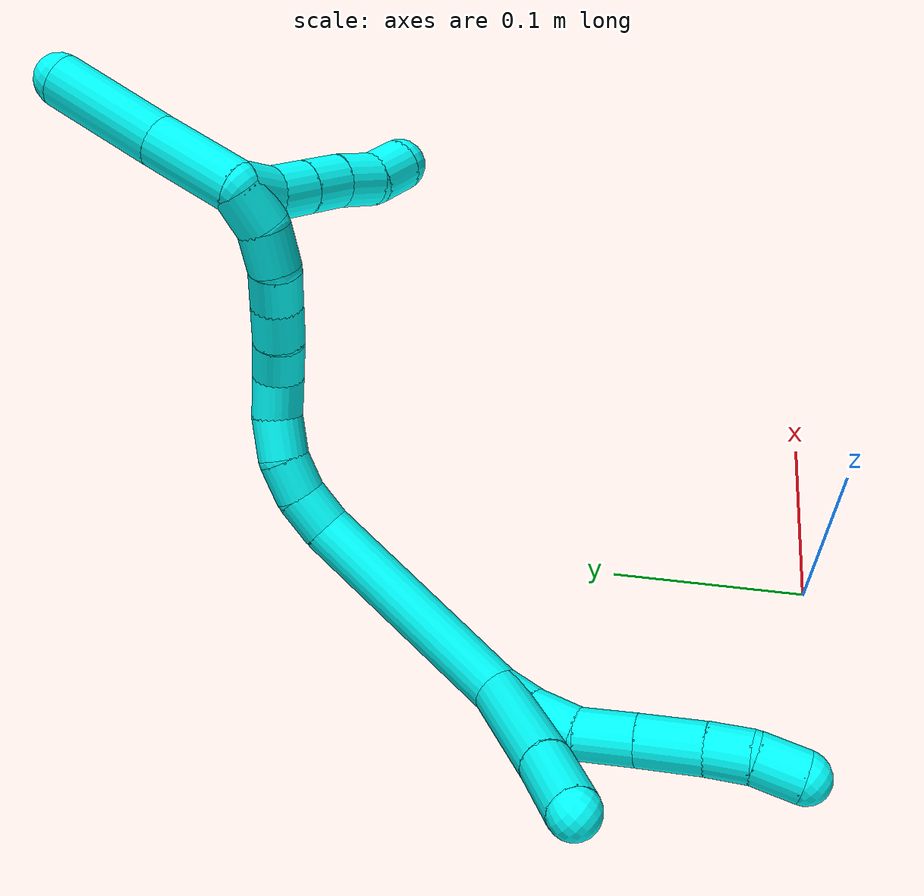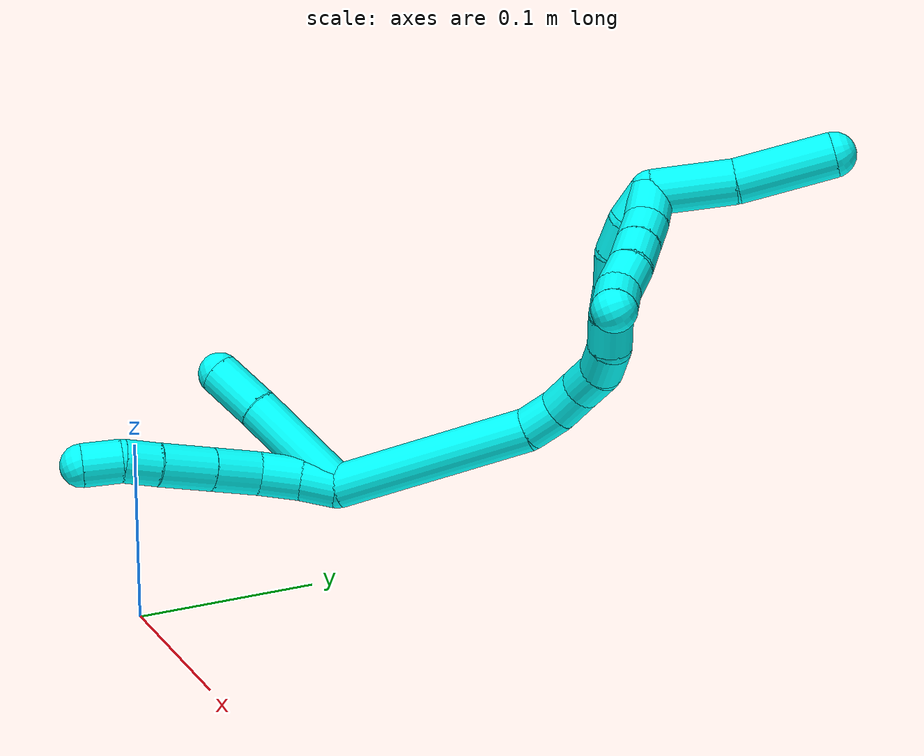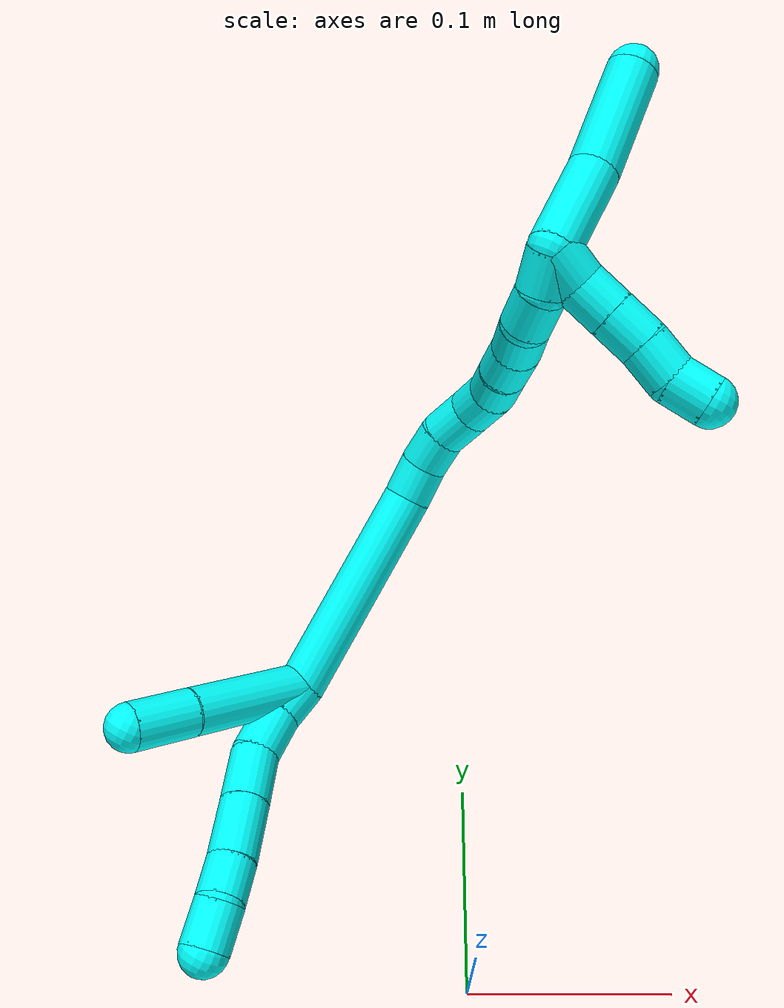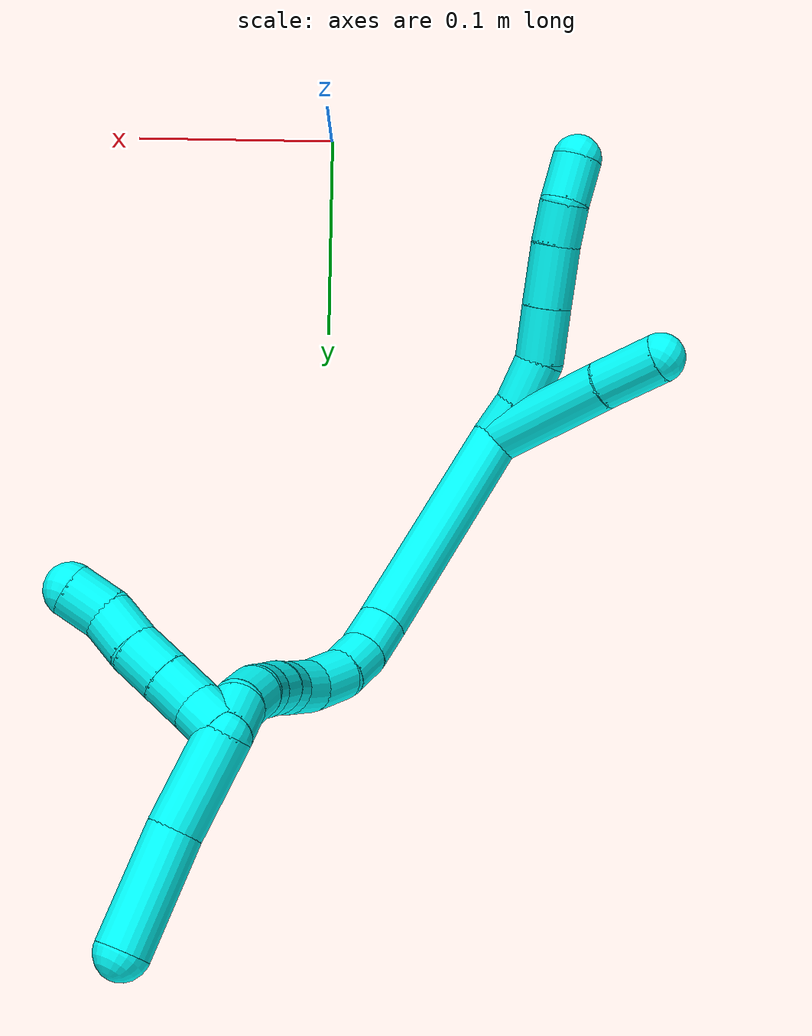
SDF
<sdf version="1.7">
 <world name="default">
  <model name="3">
   <static>0</static>
   <link name="3">
    <collision name="collision-cylinder-e_1_2_8">
     <pose>-0.004435 -0.00411 -0.008672 2.69902 -0.432888 -1.54794</pose>
     <geometry><cylinder><radius>0.0125</radius><length>0.021144</length></cylinder></geometry>
     <surface>
      <friction><ode><mu>1.16</mu><mu2>1.16</mu2><slip1>0</slip1><slip2>0</slip2></ode></friction>
      <contact><ode><kp>1e+06</kp><kd>1</kd><max_vel>0</max_vel><min_depth>0.001</min_depth></ode></contact>
     </surface>
    </collision>
    <visual name="visual-cylinder-e_1_2_8">
     <pose>-0.004435 -0.00411 -0.008672 2.69902 -0.432888 -1.54794</pose>
     <geometry><cylinder><radius>0.0125</radius><length>0.021144</length></cylinder></geometry>
     <material><ambient>0.003922 1 0.996078 1</ambient></material>
    </visual>
    <collision name="collision-cylinder-e_2_8_9">
     <pose>-0.012338 -0.014318 -0.027596 2.60498 -0.282965 -0.95599</pose>
     <geometry><cylinder><radius>0.0125</radius><length>0.024844</length></cylinder></geometry>
     <surface>
      <friction><ode><mu>1.16</mu><mu2>1.16</mu2><slip1>0</slip1><slip2>0</slip2></ode></friction>
      <contact><ode><kp>1e+06</kp><kd>1</kd><max_vel>0</max_vel><min_depth>0.001</min_depth></ode></contact>
     </surface>
    </collision>
    <visual name="visual-cylinder-e_2_8_9">
     <pose>-0.012338 -0.014318 -0.027596 2.60498 -0.282965 -0.95599</pose>
     <geometry><cylinder><radius>0.0125</radius><length>0.024844</length></cylinder></geometry>
     <material><ambient>0.003922 1 0.996078 1</ambient></material>
    </visual>
    <collision name="collision-cylinder-e_3_9_10">
     <pose>-0.01691 -0.030299 -0.047942 2.36677 -0.077946 -0.190548</pose>
     <geometry><cylinder><radius>0.0125</radius><length>0.02834</length></cylinder></geometry>
     <surface>
      <friction><ode><mu>1.16</mu><mu2>1.16</mu2><slip1>0</slip1><slip2>0</slip2></ode></friction>
      <contact><ode><kp>1e+06</kp><kd>1</kd><max_vel>0</max_vel><min_depth>0.001</min_depth></ode></contact>
     </surface>
    </collision>
    <visual name="visual-cylinder-e_3_9_10">
     <pose>-0.01691 -0.030299 -0.047942 2.36677 -0.077946 -0.190548</pose>
     <geometry><cylinder><radius>0.0125</radius><length>0.02834</length></cylinder></geometry>
     <material><ambient>0.003922 1 0.996078 1</ambient></material>
    </visual>
    <collision name="collision-cylinder-e_4_10_11">
     <pose>-0.019357 -0.051078 -0.069417 2.37798 -0.085119 -0.211336</pose>
     <geometry><cylinder><radius>0.0125</radius><length>0.031627</length></cylinder></geometry>
     <surface>
      <friction><ode><mu>1.16</mu><mu2>1.16</mu2><slip1>0</slip1><slip2>0</slip2></ode></friction>
      <contact><ode><kp>1e+06</kp><kd>1</kd><max_vel>0</max_vel><min_depth>0.001</min_depth></ode></contact>
     </surface>
    </collision>
    <visual name="visual-cylinder-e_4_10_11">
     <pose>-0.019357 -0.051078 -0.069417 2.37798 -0.085119 -0.211336</pose>
     <geometry><cylinder><radius>0.0125</radius><length>0.031627</length></cylinder></geometry>
     <material><ambient>0.003922 1 0.996078 1</ambient></material>
    </visual>
    <collision name="collision-cylinder-e_5_11_12">
     <pose>-0.022114 -0.068928 -0.088602 2.41369 -0.134284 -0.349456</pose>
     <geometry><cylinder><radius>0.0125</radius><length>0.021095</length></cylinder></geometry>
     <surface>
      <friction><ode><mu>1.16</mu><mu2>1.16</mu2><slip1>0</slip1><slip2>0</slip2></ode></friction>
      <contact><ode><kp>1e+06</kp><kd>1</kd><max_vel>0</max_vel><min_depth>0.001</min_depth></ode></contact>
     </surface>
    </collision>
    <visual name="visual-cylinder-e_5_11_12">
     <pose>-0.022114 -0.068928 -0.088602 2.41369 -0.134284 -0.349456</pose>
     <geometry><cylinder><radius>0.0125</radius><length>0.021095</length></cylinder></geometry>
     <material><ambient>0.003922 1 0.996078 1</ambient></material>
    </visual>
    <collision name="collision-cylinder-e_6_12_6">
     <pose>-0.024058 -0.08098 -0.106672 2.6807 -0.046362 -0.197005</pose>
     <geometry><cylinder><radius>0.0125</radius><length>0.02295</length></cylinder></geometry>
     <surface>
      <friction><ode><mu>1.16</mu><mu2>1.16</mu2><slip1>0</slip1><slip2>0</slip2></ode></friction>
      <contact><ode><kp>1e+06</kp><kd>1</kd><max_vel>0</max_vel><min_depth>0.001</min_depth></ode></contact>
     </surface>
    </collision>
    <visual name="visual-cylinder-e_6_12_6">
     <pose>-0.024058 -0.08098 -0.106672 2.6807 -0.046362 -0.197005</pose>
     <geometry><cylinder><radius>0.0125</radius><length>0.02295</length></cylinder></geometry>
     <material><ambient>0.003922 1 0.996078 1</ambient></material>
    </visual>
    <collision name="collision-cylinder-e_1_2_13">
     <pose>-0.028435 -0.009417 -0.01478 2.5743 -1.01846 -2.17927</pose>
     <geometry><cylinder><radius>0.0125</radius><length>0.066804</length></cylinder></geometry>
     <surface>
      <friction><ode><mu>1.16</mu><mu2>1.16</mu2><slip1>0</slip1><slip2>0</slip2></ode></friction>
      <contact><ode><kp>1e+06</kp><kd>1</kd><max_vel>0</max_vel><min_depth>0.001</min_depth></ode></contact>
     </surface>
    </collision>
    <visual name="visual-cylinder-e_1_2_13">
     <pose>-0.028435 -0.009417 -0.01478 2.5743 -1.01846 -2.17927</pose>
     <geometry><cylinder><radius>0.0125</radius><length>0.066804</length></cylinder></geometry>
     <material><ambient>0.003922 1 0.996078 1</ambient></material>
    </visual>
    <collision name="collision-cylinder-e_2_13_5">
     <pose>-0.071001 -0.022596 -0.037414 2.69497 -1.01852 -2.36904</pose>
     <geometry><cylinder><radius>0.0125</radius><length>0.033196</length></cylinder></geometry>
     <surface>
      <friction><ode><mu>1.16</mu><mu2>1.16</mu2><slip1>0</slip1><slip2>0</slip2></ode></friction>
      <contact><ode><kp>1e+06</kp><kd>1</kd><max_vel>0</max_vel><min_depth>0.001</min_depth></ode></contact>
     </surface>
    </collision>
    <visual name="visual-cylinder-e_2_13_5">
     <pose>-0.071001 -0.022596 -0.037414 2.69497 -1.01852 -2.36904</pose>
     <geometry><cylinder><radius>0.0125</radius><length>0.033196</length></cylinder></geometry>
     <material><ambient>0.003922 1 0.996078 1</ambient></material>
    </visual>
    <collision name="collision-cylinder-e_1_2_14">
     <pose>0.004778 0.00301 0.057687 -0.052125 0.082532 -0.002153</pose>
     <geometry><cylinder><radius>0.0125</radius><length>0.115925</length></cylinder></geometry>
     <surface>
      <friction><ode><mu>1.16</mu><mu2>1.16</mu2><slip1>0</slip1><slip2>0</slip2></ode></friction>
      <contact><ode><kp>1e+06</kp><kd>1</kd><max_vel>0</max_vel><min_depth>0.001</min_depth></ode></contact>
     </surface>
    </collision>
    <visual name="visual-cylinder-e_1_2_14">
     <pose>0.004778 0.00301 0.057687 -0.052125 0.082532 -0.002153</pose>
     <geometry><cylinder><radius>0.0125</radius><length>0.115925</length></cylinder></geometry>
     <material><ambient>0.003922 1 0.996078 1</ambient></material>
    </visual>
    <collision name="collision-cylinder-e_2_14_15">
     <pose>0.008598 0.004066 0.125595 0.188835 -0.091819 -0.008701</pose>
     <geometry><cylinder><radius>0.0125</radius><length>0.020902</length></cylinder></geometry>
     <surface>
      <friction><ode><mu>1.16</mu><mu2>1.16</mu2><slip1>0</slip1><slip2>0</slip2></ode></friction>
      <contact><ode><kp>1e+06</kp><kd>1</kd><max_vel>0</max_vel><min_depth>0.001</min_depth></ode></contact>
     </surface>
    </collision>
    <visual name="visual-cylinder-e_2_14_15">
     <pose>0.008598 0.004066 0.125595 0.188835 -0.091819 -0.008701</pose>
     <geometry><cylinder><radius>0.0125</radius><length>0.020902</length></cylinder></geometry>
     <material><ambient>0.003922 1 0.996078 1</ambient></material>
    </visual>
    <collision name="collision-cylinder-e_3_15_16">
     <pose>0.006722 -0.002268 0.144852 0.451426 -0.091222 -0.020961</pose>
     <geometry><cylinder><radius>0.0125</radius><length>0.020166</length></cylinder></geometry>
     <surface>
      <friction><ode><mu>1.16</mu><mu2>1.16</mu2><slip1>0</slip1><slip2>0</slip2></ode></friction>
      <contact><ode><kp>1e+06</kp><kd>1</kd><max_vel>0</max_vel><min_depth>0.001</min_depth></ode></contact>
     </surface>
    </collision>
    <visual name="visual-cylinder-e_3_15_16">
     <pose>0.006722 -0.002268 0.144852 0.451426 -0.091222 -0.020961</pose>
     <geometry><cylinder><radius>0.0125</radius><length>0.020166</length></cylinder></geometry>
     <material><ambient>0.003922 1 0.996078 1</ambient></material>
    </visual>
    <collision name="collision-cylinder-e_4_16_17">
     <pose>0.006875 -0.013173 0.162239 0.663183 0.100801 0.034732</pose>
     <geometry><cylinder><radius>0.0125</radius><length>0.021303</length></cylinder></geometry>
     <surface>
      <friction><ode><mu>1.16</mu><mu2>1.16</mu2><slip1>0</slip1><slip2>0</slip2></ode></friction>
      <contact><ode><kp>1e+06</kp><kd>1</kd><max_vel>0</max_vel><min_depth>0.001</min_depth></ode></contact>
     </surface>
    </collision>
    <visual name="visual-cylinder-e_4_16_17">
     <pose>0.006875 -0.013173 0.162239 0.663183 0.100801 0.034732</pose>
     <geometry><cylinder><radius>0.0125</radius><length>0.021303</length></cylinder></geometry>
     <material><ambient>0.003922 1 0.996078 1</ambient></material>
    </visual>
    <collision name="collision-cylinder-e_5_17_18">
     <pose>0.007018 -0.027928 0.176603 0.939895 -0.090831 -0.046157</pose>
     <geometry><cylinder><radius>0.0125</radius><length>0.020471</length></cylinder></geometry>
     <surface>
      <friction><ode><mu>1.16</mu><mu2>1.16</mu2><slip1>0</slip1><slip2>0</slip2></ode></friction>
      <contact><ode><kp>1e+06</kp><kd>1</kd><max_vel>0</max_vel><min_depth>0.001</min_depth></ode></contact>
     </surface>
    </collision>
    <visual name="visual-cylinder-e_5_17_18">
     <pose>0.007018 -0.027928 0.176603 0.939895 -0.090831 -0.046157</pose>
     <geometry><cylinder><radius>0.0125</radius><length>0.020471</length></cylinder></geometry>
     <material><ambient>0.003922 1 0.996078 1</ambient></material>
    </visual>
    <collision name="collision-cylinder-e_6_18_19">
     <pose>0.002148 -0.044236 0.187063 1.06748 -0.404043 -0.240899</pose>
     <geometry><cylinder><radius>0.0125</radius><length>0.020054</length></cylinder></geometry>
     <surface>
      <friction><ode><mu>1.16</mu><mu2>1.16</mu2><slip1>0</slip1><slip2>0</slip2></ode></friction>
      <contact><ode><kp>1e+06</kp><kd>1</kd><max_vel>0</max_vel><min_depth>0.001</min_depth></ode></contact>
     </surface>
    </collision>
    <visual name="visual-cylinder-e_6_18_19">
     <pose>0.002148 -0.044236 0.187063 1.06748 -0.404043 -0.240899</pose>
     <geometry><cylinder><radius>0.0125</radius><length>0.020054</length></cylinder></geometry>
     <material><ambient>0.003922 1 0.996078 1</ambient></material>
    </visual>
    <collision name="collision-cylinder-e_7_19_20">
     <pose>-0.005311 -0.060031 0.196815 0.968681 -0.359215 -0.190478</pose>
     <geometry><cylinder><radius>0.0125</radius><length>0.02001</length></cylinder></geometry>
     <surface>
      <friction><ode><mu>1.16</mu><mu2>1.16</mu2><slip1>0</slip1><slip2>0</slip2></ode></friction>
      <contact><ode><kp>1e+06</kp><kd>1</kd><max_vel>0</max_vel><min_depth>0.001</min_depth></ode></contact>
     </surface>
    </collision>
    <visual name="visual-cylinder-e_7_19_20">
     <pose>-0.005311 -0.060031 0.196815 0.968681 -0.359215 -0.190478</pose>
     <geometry><cylinder><radius>0.0125</radius><length>0.02001</length></cylinder></geometry>
     <material><ambient>0.003922 1 0.996078 1</ambient></material>
    </visual>
    <collision name="collision-cylinder-e_8_20_21">
     <pose>-0.013457 -0.075383 0.206631 1.03701 -0.481138 -0.278141</pose>
     <geometry><cylinder><radius>0.0125</radius><length>0.020002</length></cylinder></geometry>
     <surface>
      <friction><ode><mu>1.16</mu><mu2>1.16</mu2><slip1>0</slip1><slip2>0</slip2></ode></friction>
      <contact><ode><kp>1e+06</kp><kd>1</kd><max_vel>0</max_vel><min_depth>0.001</min_depth></ode></contact>
     </surface>
    </collision>
    <visual name="visual-cylinder-e_8_20_21">
     <pose>-0.013457 -0.075383 0.206631 1.03701 -0.481138 -0.278141</pose>
     <geometry><cylinder><radius>0.0125</radius><length>0.020002</length></cylinder></geometry>
     <material><ambient>0.003922 1 0.996078 1</ambient></material>
    </visual>
    <collision name="collision-cylinder-e_9_21_22">
     <pose>-0.021581 -0.089526 0.218344 0.735051 -0.345574 -0.134191</pose>
     <geometry><cylinder><radius>0.0125</radius><length>0.020638</length></cylinder></geometry>
     <surface>
      <friction><ode><mu>1.16</mu><mu2>1.16</mu2><slip1>0</slip1><slip2>0</slip2></ode></friction>
      <contact><ode><kp>1e+06</kp><kd>1</kd><max_vel>0</max_vel><min_depth>0.001</min_depth></ode></contact>
     </surface>
    </collision>
    <visual name="visual-cylinder-e_9_21_22">
     <pose>-0.021581 -0.089526 0.218344 0.735051 -0.345574 -0.134191</pose>
     <geometry><cylinder><radius>0.0125</radius><length>0.020638</length></cylinder></geometry>
     <material><ambient>0.003922 1 0.996078 1</ambient></material>
    </visual>
    <collision name="collision-cylinder-e_10_22_1">
     <pose>-0.028974 -0.099663 0.234321 0.391815 -0.38957 -0.078264</pose>
     <geometry><cylinder><radius>0.0125</radius><length>0.020528</length></cylinder></geometry>
     <surface>
      <friction><ode><mu>1.16</mu><mu2>1.16</mu2><slip1>0</slip1><slip2>0</slip2></ode></friction>
      <contact><ode><kp>1e+06</kp><kd>1</kd><max_vel>0</max_vel><min_depth>0.001</min_depth></ode></contact>
     </surface>
    </collision>
    <visual name="visual-cylinder-e_10_22_1">
     <pose>-0.028974 -0.099663 0.234321 0.391815 -0.38957 -0.078264</pose>
     <geometry><cylinder><radius>0.0125</radius><length>0.020528</length></cylinder></geometry>
     <material><ambient>0.003922 1 0.996078 1</ambient></material>
    </visual>
    <collision name="collision-cylinder-e_1_1_23">
     <pose>-0.023677 -0.104575 0.239382 2.8082 1.16682 2.6424</pose>
     <geometry><cylinder><radius>0.0125</radius><length>0.02</length></cylinder></geometry>
     <surface>
      <friction><ode><mu>1.16</mu><mu2>1.16</mu2><slip1>0</slip1><slip2>0</slip2></ode></friction>
      <contact><ode><kp>1e+06</kp><kd>1</kd><max_vel>0</max_vel><min_depth>0.001</min_depth></ode></contact>
     </surface>
    </collision>
    <visual name="visual-cylinder-e_1_1_23">
     <pose>-0.023677 -0.104575 0.239382 2.8082 1.16682 2.6424</pose>
     <geometry><cylinder><radius>0.0125</radius><length>0.02</length></cylinder></geometry>
     <material><ambient>0.003922 1 0.996078 1</ambient></material>
    </visual>
    <collision name="collision-cylinder-e_2_23_24">
     <pose>-0.006052 -0.11037 0.232734 2.14775 1.00291 1.58158</pose>
     <geometry><cylinder><radius>0.0125</radius><length>0.02</length></cylinder></geometry>
     <surface>
      <friction><ode><mu>1.16</mu><mu2>1.16</mu2><slip1>0</slip1><slip2>0</slip2></ode></friction>
      <contact><ode><kp>1e+06</kp><kd>1</kd><max_vel>0</max_vel><min_depth>0.001</min_depth></ode></contact>
     </surface>
    </collision>
    <visual name="visual-cylinder-e_2_23_24">
     <pose>-0.006052 -0.11037 0.232734 2.14775 1.00291 1.58158</pose>
     <geometry><cylinder><radius>0.0125</radius><length>0.02</length></cylinder></geometry>
     <material><ambient>0.003922 1 0.996078 1</ambient></material>
    </visual>
    <collision name="collision-cylinder-e_3_24_25">
     <pose>0.01087 -0.119293 0.226903 2.15144 1.01439 1.59956</pose>
     <geometry><cylinder><radius>0.0125</radius><length>0.02</length></cylinder></geometry>
     <surface>
      <friction><ode><mu>1.16</mu><mu2>1.16</mu2><slip1>0</slip1><slip2>0</slip2></ode></friction>
      <contact><ode><kp>1e+06</kp><kd>1</kd><max_vel>0</max_vel><min_depth>0.001</min_depth></ode></contact>
     </surface>
    </collision>
    <visual name="visual-cylinder-e_3_24_25">
     <pose>0.01087 -0.119293 0.226903 2.15144 1.01439 1.59956</pose>
     <geometry><cylinder><radius>0.0125</radius><length>0.02</length></cylinder></geometry>
     <material><ambient>0.003922 1 0.996078 1</ambient></material>
    </visual>
    <collision name="collision-cylinder-e_4_25_26">
     <pose>0.027479 -0.127824 0.219862 2.35969 0.947134 1.78689</pose>
     <geometry><cylinder><radius>0.0125</radius><length>0.02</length></cylinder></geometry>
     <surface>
      <friction><ode><mu>1.16</mu><mu2>1.16</mu2><slip1>0</slip1><slip2>0</slip2></ode></friction>
      <contact><ode><kp>1e+06</kp><kd>1</kd><max_vel>0</max_vel><min_depth>0.001</min_depth></ode></contact>
     </surface>
    </collision>
    <visual name="visual-cylinder-e_4_25_26">
     <pose>0.027479 -0.127824 0.219862 2.35969 0.947134 1.78689</pose>
     <geometry><cylinder><radius>0.0125</radius><length>0.02</length></cylinder></geometry>
     <material><ambient>0.003922 1 0.996078 1</ambient></material>
    </visual>
    <collision name="collision-cylinder-e_5_26_4">
     <pose>0.043837 -0.137497 0.21462 1.76593 0.96856 1.13893</pose>
     <geometry><cylinder><radius>0.0125</radius><length>0.02</length></cylinder></geometry>
     <surface>
      <friction><ode><mu>1.16</mu><mu2>1.16</mu2><slip1>0</slip1><slip2>0</slip2></ode></friction>
      <contact><ode><kp>1e+06</kp><kd>1</kd><max_vel>0</max_vel><min_depth>0.001</min_depth></ode></contact>
     </surface>
    </collision>
    <visual name="visual-cylinder-e_5_26_4">
     <pose>0.043837 -0.137497 0.21462 1.76593 0.96856 1.13893</pose>
     <geometry><cylinder><radius>0.0125</radius><length>0.02</length></cylinder></geometry>
     <material><ambient>0.003922 1 0.996078 1</ambient></material>
    </visual>
    <collision name="collision-cylinder-e_1_1_27">
     <pose>-0.029569 -0.09729 0.264803 -0.269625 0.145629 -0.019787</pose>
     <geometry><cylinder><radius>0.0125</radius><length>0.045522</length></cylinder></geometry>
     <surface>
      <friction><ode><mu>1.16</mu><mu2>1.16</mu2><slip1>0</slip1><slip2>0</slip2></ode></friction>
      <contact><ode><kp>1e+06</kp><kd>1</kd><max_vel>0</max_vel><min_depth>0.001</min_depth></ode></contact>
     </surface>
    </collision>
    <visual name="visual-cylinder-e_1_1_27">
     <pose>-0.029569 -0.09729 0.264803 -0.269625 0.145629 -0.019787</pose>
     <geometry><cylinder><radius>0.0125</radius><length>0.045522</length></cylinder></geometry>
     <material><ambient>0.003922 1 0.996078 1</ambient></material>
    </visual>
    <collision name="collision-cylinder-e_2_27_3">
     <pose>-0.025792 -0.085422 0.313104 -0.217211 0.017417 -0.001899</pose>
     <geometry><cylinder><radius>0.0125</radius><length>0.054478</length></cylinder></geometry>
     <surface>
      <friction><ode><mu>1.16</mu><mu2>1.16</mu2><slip1>0</slip1><slip2>0</slip2></ode></friction>
      <contact><ode><kp>1e+06</kp><kd>1</kd><max_vel>0</max_vel><min_depth>0.001</min_depth></ode></contact>
     </surface>
    </collision>
    <visual name="visual-cylinder-e_2_27_3">
     <pose>-0.025792 -0.085422 0.313104 -0.217211 0.017417 -0.001899</pose>
     <geometry><cylinder><radius>0.0125</radius><length>0.054478</length></cylinder></geometry>
     <material><ambient>0.003922 1 0.996078 1</ambient></material>
    </visual>
    <collision name="collision-sphere-3">
     <pose>-0.025318 -0.079553 0.339699 0 -0 0</pose>
     <geometry><sphere><radius>0.0125</radius></sphere></geometry>
     <surface>
      <friction><ode><mu>1.16</mu><mu2>1.16</mu2><slip1>0</slip1><slip2>0</slip2></ode></friction>
      <contact><ode><kp>1e+06</kp><kd>1</kd><max_vel>0</max_vel><min_depth>0.001</min_depth></ode></contact>
     </surface>
    </collision>
    <visual name="visual-sphere-3">
     <pose>-0.025318 -0.079553 0.339699 0 -0 0</pose>
     <geometry><sphere><radius>0.0125</radius></sphere></geometry>
     <material><ambient>0.003922 1 0.996078 1</ambient></material>
    </visual>
    <collision name="collision-sphere-27">
     <pose>-0.026266 -0.091292 0.28651 0 -0 0</pose>
     <geometry><sphere><radius>0.0125</radius></sphere></geometry>
     <surface>
      <friction><ode><mu>1.16</mu><mu2>1.16</mu2><slip1>0</slip1><slip2>0</slip2></ode></friction>
      <contact><ode><kp>1e+06</kp><kd>1</kd><max_vel>0</max_vel><min_depth>0.001</min_depth></ode></contact>
     </surface>
    </collision>
    <visual name="visual-sphere-27">
     <pose>-0.026266 -0.091292 0.28651 0 -0 0</pose>
     <geometry><sphere><radius>0.0125</radius></sphere></geometry>
     <material><ambient>0.003922 1 0.996078 1</ambient></material>
    </visual>
    <collision name="collision-sphere-4">
     <pose>0.052078 -0.143054 0.213521 0 -0 0</pose>
     <geometry><sphere><radius>0.0125</radius></sphere></geometry>
     <surface>
      <friction><ode><mu>1.16</mu><mu2>1.16</mu2><slip1>0</slip1><slip2>0</slip2></ode></friction>
      <contact><ode><kp>1e+06</kp><kd>1</kd><max_vel>0</max_vel><min_depth>0.001</min_depth></ode></contact>
     </surface>
    </collision>
    <visual name="visual-sphere-4">
     <pose>0.052078 -0.143054 0.213521 0 -0 0</pose>
     <geometry><sphere><radius>0.0125</radius></sphere></geometry>
     <material><ambient>0.003922 1 0.996078 1</ambient></material>
    </visual>
    <collision name="collision-sphere-26">
     <pose>0.035597 -0.131939 0.215718 0 -0 0</pose>
     <geometry><sphere><radius>0.0125</radius></sphere></geometry>
     <surface>
      <friction><ode><mu>1.16</mu><mu2>1.16</mu2><slip1>0</slip1><slip2>0</slip2></ode></friction>
      <contact><ode><kp>1e+06</kp><kd>1</kd><max_vel>0</max_vel><min_depth>0.001</min_depth></ode></contact>
     </surface>
    </collision>
    <visual name="visual-sphere-26">
     <pose>0.035597 -0.131939 0.215718 0 -0 0</pose>
     <geometry><sphere><radius>0.0125</radius></sphere></geometry>
     <material><ambient>0.003922 1 0.996078 1</ambient></material>
    </visual>
    <collision name="collision-sphere-25">
     <pose>0.019362 -0.123709 0.224006 0 -0 0</pose>
     <geometry><sphere><radius>0.0125</radius></sphere></geometry>
     <surface>
      <friction><ode><mu>1.16</mu><mu2>1.16</mu2><slip1>0</slip1><slip2>0</slip2></ode></friction>
      <contact><ode><kp>1e+06</kp><kd>1</kd><max_vel>0</max_vel><min_depth>0.001</min_depth></ode></contact>
     </surface>
    </collision>
    <visual name="visual-sphere-25">
     <pose>0.019362 -0.123709 0.224006 0 -0 0</pose>
     <geometry><sphere><radius>0.0125</radius></sphere></geometry>
     <material><ambient>0.003922 1 0.996078 1</ambient></material>
    </visual>
    <collision name="collision-sphere-24">
     <pose>0.002379 -0.114877 0.2298 0 -0 0</pose>
     <geometry><sphere><radius>0.0125</radius></sphere></geometry>
     <surface>
      <friction><ode><mu>1.16</mu><mu2>1.16</mu2><slip1>0</slip1><slip2>0</slip2></ode></friction>
      <contact><ode><kp>1e+06</kp><kd>1</kd><max_vel>0</max_vel><min_depth>0.001</min_depth></ode></contact>
     </surface>
    </collision>
    <visual name="visual-sphere-24">
     <pose>0.002379 -0.114877 0.2298 0 -0 0</pose>
     <geometry><sphere><radius>0.0125</radius></sphere></geometry>
     <material><ambient>0.003922 1 0.996078 1</ambient></material>
    </visual>
    <collision name="collision-sphere-23">
     <pose>-0.014482 -0.105862 0.235668 0 -0 0</pose>
     <geometry><sphere><radius>0.0125</radius></sphere></geometry>
     <surface>
      <friction><ode><mu>1.16</mu><mu2>1.16</mu2><slip1>0</slip1><slip2>0</slip2></ode></friction>
      <contact><ode><kp>1e+06</kp><kd>1</kd><max_vel>0</max_vel><min_depth>0.001</min_depth></ode></contact>
     </surface>
    </collision>
    <visual name="visual-sphere-23">
     <pose>-0.014482 -0.105862 0.235668 0 -0 0</pose>
     <geometry><sphere><radius>0.0125</radius></sphere></geometry>
     <material><ambient>0.003922 1 0.996078 1</ambient></material>
    </visual>
    <collision name="collision-sphere-1">
     <pose>-0.032872 -0.103289 0.243097 0 -0 0</pose>
     <geometry><sphere><radius>0.0125</radius></sphere></geometry>
     <surface>
      <friction><ode><mu>1.16</mu><mu2>1.16</mu2><slip1>0</slip1><slip2>0</slip2></ode></friction>
      <contact><ode><kp>1e+06</kp><kd>1</kd><max_vel>0</max_vel><min_depth>0.001</min_depth></ode></contact>
     </surface>
    </collision>
    <visual name="visual-sphere-1">
     <pose>-0.032872 -0.103289 0.243097 0 -0 0</pose>
     <geometry><sphere><radius>0.0125</radius></sphere></geometry>
     <material><ambient>0.003922 1 0.996078 1</ambient></material>
    </visual>
    <collision name="collision-sphere-22">
     <pose>-0.025076 -0.096037 0.225546 0 -0 0</pose>
     <geometry><sphere><radius>0.0125</radius></sphere></geometry>
     <surface>
      <friction><ode><mu>1.16</mu><mu2>1.16</mu2><slip1>0</slip1><slip2>0</slip2></ode></friction>
      <contact><ode><kp>1e+06</kp><kd>1</kd><max_vel>0</max_vel><min_depth>0.001</min_depth></ode></contact>
     </surface>
    </collision>
    <visual name="visual-sphere-22">
     <pose>-0.025076 -0.096037 0.225546 0 -0 0</pose>
     <geometry><sphere><radius>0.0125</radius></sphere></geometry>
     <material><ambient>0.003922 1 0.996078 1</ambient></material>
    </visual>
    <collision name="collision-sphere-21">
     <pose>-0.018085 -0.083015 0.211142 0 -0 0</pose>
     <geometry><sphere><radius>0.0125</radius></sphere></geometry>
     <surface>
      <friction><ode><mu>1.16</mu><mu2>1.16</mu2><slip1>0</slip1><slip2>0</slip2></ode></friction>
      <contact><ode><kp>1e+06</kp><kd>1</kd><max_vel>0</max_vel><min_depth>0.001</min_depth></ode></contact>
     </surface>
    </collision>
    <visual name="visual-sphere-21">
     <pose>-0.018085 -0.083015 0.211142 0 -0 0</pose>
     <geometry><sphere><radius>0.0125</radius></sphere></geometry>
     <material><ambient>0.003922 1 0.996078 1</ambient></material>
    </visual>
    <collision name="collision-sphere-12">
     <pose>-0.023526 -0.075882 -0.096406 0 -0 0</pose>
     <geometry><sphere><radius>0.0125</radius></sphere></geometry>
     <surface>
      <friction><ode><mu>1.16</mu><mu2>1.16</mu2><slip1>0</slip1><slip2>0</slip2></ode></friction>
      <contact><ode><kp>1e+06</kp><kd>1</kd><max_vel>0</max_vel><min_depth>0.001</min_depth></ode></contact>
     </surface>
    </collision>
    <visual name="visual-sphere-12">
     <pose>-0.023526 -0.075882 -0.096406 0 -0 0</pose>
     <geometry><sphere><radius>0.0125</radius></sphere></geometry>
     <material><ambient>0.003922 1 0.996078 1</ambient></material>
    </visual>
    <collision name="collision-sphere-11">
     <pose>-0.020702 -0.061974 -0.080798 0 -0 0</pose>
     <geometry><sphere><radius>0.0125</radius></sphere></geometry>
     <surface>
      <friction><ode><mu>1.16</mu><mu2>1.16</mu2><slip1>0</slip1><slip2>0</slip2></ode></friction>
      <contact><ode><kp>1e+06</kp><kd>1</kd><max_vel>0</max_vel><min_depth>0.001</min_depth></ode></contact>
     </surface>
    </collision>
    <visual name="visual-sphere-11">
     <pose>-0.020702 -0.061974 -0.080798 0 -0 0</pose>
     <geometry><sphere><radius>0.0125</radius></sphere></geometry>
     <material><ambient>0.003922 1 0.996078 1</ambient></material>
    </visual>
    <collision name="collision-sphere-10">
     <pose>-0.018013 -0.040182 -0.058036 0 -0 0</pose>
     <geometry><sphere><radius>0.0125</radius></sphere></geometry>
     <surface>
      <friction><ode><mu>1.16</mu><mu2>1.16</mu2><slip1>0</slip1><slip2>0</slip2></ode></friction>
      <contact><ode><kp>1e+06</kp><kd>1</kd><max_vel>0</max_vel><min_depth>0.001</min_depth></ode></contact>
     </surface>
    </collision>
    <visual name="visual-sphere-10">
     <pose>-0.018013 -0.040182 -0.058036 0 -0 0</pose>
     <geometry><sphere><radius>0.0125</radius></sphere></geometry>
     <material><ambient>0.003922 1 0.996078 1</ambient></material>
    </visual>
    <collision name="collision-sphere-9">
     <pose>-0.015806 -0.020416 -0.037847 0 -0 0</pose>
     <geometry><sphere><radius>0.0125</radius></sphere></geometry>
     <surface>
      <friction><ode><mu>1.16</mu><mu2>1.16</mu2><slip1>0</slip1><slip2>0</slip2></ode></friction>
      <contact><ode><kp>1e+06</kp><kd>1</kd><max_vel>0</max_vel><min_depth>0.001</min_depth></ode></contact>
     </surface>
    </collision>
    <visual name="visual-sphere-9">
     <pose>-0.015806 -0.020416 -0.037847 0 -0 0</pose>
     <geometry><sphere><radius>0.0125</radius></sphere></geometry>
     <material><ambient>0.003922 1 0.996078 1</ambient></material>
    </visual>
    <collision name="collision-sphere-2">
     <geometry><sphere><radius>0.0125</radius></sphere></geometry>
     <surface>
      <friction><ode><mu>1.16</mu><mu2>1.16</mu2><slip1>0</slip1><slip2>0</slip2></ode></friction>
      <contact><ode><kp>1e+06</kp><kd>1</kd><max_vel>0</max_vel><min_depth>0.001</min_depth></ode></contact>
     </surface>
    </collision>
    <visual name="visual-sphere-2">
     <geometry><sphere><radius>0.0125</radius></sphere></geometry>
     <material><ambient>0.003922 1 0.996078 1</ambient></material>
    </visual>
    <collision name="collision-sphere-19">
     <pose>-0.001794 -0.052312 0.19151 0 -0 0</pose>
     <geometry><sphere><radius>0.0125</radius></sphere></geometry>
     <surface>
      <friction><ode><mu>1.16</mu><mu2>1.16</mu2><slip1>0</slip1><slip2>0</slip2></ode></friction>
      <contact><ode><kp>1e+06</kp><kd>1</kd><max_vel>0</max_vel><min_depth>0.001</min_depth></ode></contact>
     </surface>
    </collision>
    <visual name="visual-sphere-19">
     <pose>-0.001794 -0.052312 0.19151 0 -0 0</pose>
     <geometry><sphere><radius>0.0125</radius></sphere></geometry>
     <material><ambient>0.003922 1 0.996078 1</ambient></material>
    </visual>
    <collision name="collision-sphere-8">
     <pose>-0.00887 -0.00822 -0.017344 0 -0 0</pose>
     <geometry><sphere><radius>0.0125</radius></sphere></geometry>
     <surface>
      <friction><ode><mu>1.16</mu><mu2>1.16</mu2><slip1>0</slip1><slip2>0</slip2></ode></friction>
      <contact><ode><kp>1e+06</kp><kd>1</kd><max_vel>0</max_vel><min_depth>0.001</min_depth></ode></contact>
     </surface>
    </collision>
    <visual name="visual-sphere-8">
     <pose>-0.00887 -0.00822 -0.017344 0 -0 0</pose>
     <geometry><sphere><radius>0.0125</radius></sphere></geometry>
     <material><ambient>0.003922 1 0.996078 1</ambient></material>
    </visual>
    <collision name="collision-sphere-6">
     <pose>-0.02459 -0.086078 -0.116939 0 -0 0</pose>
     <geometry><sphere><radius>0.0125</radius></sphere></geometry>
     <surface>
      <friction><ode><mu>1.16</mu><mu2>1.16</mu2><slip1>0</slip1><slip2>0</slip2></ode></friction>
      <contact><ode><kp>1e+06</kp><kd>1</kd><max_vel>0</max_vel><min_depth>0.001</min_depth></ode></contact>
     </surface>
    </collision>
    <visual name="visual-sphere-6">
     <pose>-0.02459 -0.086078 -0.116939 0 -0 0</pose>
     <geometry><sphere><radius>0.0125</radius></sphere></geometry>
     <material><ambient>0.003922 1 0.996078 1</ambient></material>
    </visual>
    <collision name="collision-sphere-13">
     <pose>-0.05687 -0.018834 -0.02956 0 -0 0</pose>
     <geometry><sphere><radius>0.0125</radius></sphere></geometry>
     <surface>
      <friction><ode><mu>1.16</mu><mu2>1.16</mu2><slip1>0</slip1><slip2>0</slip2></ode></friction>
      <contact><ode><kp>1e+06</kp><kd>1</kd><max_vel>0</max_vel><min_depth>0.001</min_depth></ode></contact>
     </surface>
    </collision>
    <visual name="visual-sphere-13">
     <pose>-0.05687 -0.018834 -0.02956 0 -0 0</pose>
     <geometry><sphere><radius>0.0125</radius></sphere></geometry>
     <material><ambient>0.003922 1 0.996078 1</ambient></material>
    </visual>
    <collision name="collision-sphere-5">
     <pose>-0.085131 -0.026357 -0.045268 0 -0 0</pose>
     <geometry><sphere><radius>0.0125</radius></sphere></geometry>
     <surface>
      <friction><ode><mu>1.16</mu><mu2>1.16</mu2><slip1>0</slip1><slip2>0</slip2></ode></friction>
      <contact><ode><kp>1e+06</kp><kd>1</kd><max_vel>0</max_vel><min_depth>0.001</min_depth></ode></contact>
     </surface>
    </collision>
    <visual name="visual-sphere-5">
     <pose>-0.085131 -0.026357 -0.045268 0 -0 0</pose>
     <geometry><sphere><radius>0.0125</radius></sphere></geometry>
     <material><ambient>0.003922 1 0.996078 1</ambient></material>
    </visual>
    <collision name="collision-sphere-14">
     <pose>0.009557 0.006019 0.115373 0 -0 0</pose>
     <geometry><sphere><radius>0.0125</radius></sphere></geometry>
     <surface>
      <friction><ode><mu>1.16</mu><mu2>1.16</mu2><slip1>0</slip1><slip2>0</slip2></ode></friction>
      <contact><ode><kp>1e+06</kp><kd>1</kd><max_vel>0</max_vel><min_depth>0.001</min_depth></ode></contact>
     </surface>
    </collision>
    <visual name="visual-sphere-14">
     <pose>0.009557 0.006019 0.115373 0 -0 0</pose>
     <geometry><sphere><radius>0.0125</radius></sphere></geometry>
     <material><ambient>0.003922 1 0.996078 1</ambient></material>
    </visual>
    <collision name="collision-sphere-15">
     <pose>0.00764 0.002112 0.135817 0 -0 0</pose>
     <geometry><sphere><radius>0.0125</radius></sphere></geometry>
     <surface>
      <friction><ode><mu>1.16</mu><mu2>1.16</mu2><slip1>0</slip1><slip2>0</slip2></ode></friction>
      <contact><ode><kp>1e+06</kp><kd>1</kd><max_vel>0</max_vel><min_depth>0.001</min_depth></ode></contact>
     </surface>
    </collision>
    <visual name="visual-sphere-15">
     <pose>0.00764 0.002112 0.135817 0 -0 0</pose>
     <geometry><sphere><radius>0.0125</radius></sphere></geometry>
     <material><ambient>0.003922 1 0.996078 1</ambient></material>
    </visual>
    <collision name="collision-sphere-16">
     <pose>0.005803 -0.006649 0.153888 0 -0 0</pose>
     <geometry><sphere><radius>0.0125</radius></sphere></geometry>
     <surface>
      <friction><ode><mu>1.16</mu><mu2>1.16</mu2><slip1>0</slip1><slip2>0</slip2></ode></friction>
      <contact><ode><kp>1e+06</kp><kd>1</kd><max_vel>0</max_vel><min_depth>0.001</min_depth></ode></contact>
     </surface>
    </collision>
    <visual name="visual-sphere-16">
     <pose>0.005803 -0.006649 0.153888 0 -0 0</pose>
     <geometry><sphere><radius>0.0125</radius></sphere></geometry>
     <material><ambient>0.003922 1 0.996078 1</ambient></material>
    </visual>
    <collision name="collision-sphere-17">
     <pose>0.007947 -0.019697 0.17059 0 -0 0</pose>
     <geometry><sphere><radius>0.0125</radius></sphere></geometry>
     <surface>
      <friction><ode><mu>1.16</mu><mu2>1.16</mu2><slip1>0</slip1><slip2>0</slip2></ode></friction>
      <contact><ode><kp>1e+06</kp><kd>1</kd><max_vel>0</max_vel><min_depth>0.001</min_depth></ode></contact>
     </surface>
    </collision>
    <visual name="visual-sphere-17">
     <pose>0.007947 -0.019697 0.17059 0 -0 0</pose>
     <geometry><sphere><radius>0.0125</radius></sphere></geometry>
     <material><ambient>0.003922 1 0.996078 1</ambient></material>
    </visual>
    <collision name="collision-sphere-18">
     <pose>0.00609 -0.036159 0.182616 0 -0 0</pose>
     <geometry><sphere><radius>0.0125</radius></sphere></geometry>
     <surface>
      <friction><ode><mu>1.16</mu><mu2>1.16</mu2><slip1>0</slip1><slip2>0</slip2></ode></friction>
      <contact><ode><kp>1e+06</kp><kd>1</kd><max_vel>0</max_vel><min_depth>0.001</min_depth></ode></contact>
     </surface>
    </collision>
    <visual name="visual-sphere-18">
     <pose>0.00609 -0.036159 0.182616 0 -0 0</pose>
     <geometry><sphere><radius>0.0125</radius></sphere></geometry>
     <material><ambient>0.003922 1 0.996078 1</ambient></material>
    </visual>
    <collision name="collision-sphere-20">
     <pose>-0.008828 -0.06775 0.20212 0 -0 0</pose>
     <geometry><sphere><radius>0.0125</radius></sphere></geometry>
     <surface>
      <friction><ode><mu>1.16</mu><mu2>1.16</mu2><slip1>0</slip1><slip2>0</slip2></ode></friction>
      <contact><ode><kp>1e+06</kp><kd>1</kd><max_vel>0</max_vel><min_depth>0.001</min_depth></ode></contact>
     </surface>
    </collision>
    <visual name="visual-sphere-20">
     <pose>-0.008828 -0.06775 0.20212 0 -0 0</pose>
     <geometry><sphere><radius>0.0125</radius></sphere></geometry>
     <material><ambient>0.003922 1 0.996078 1</ambient></material>
    </visual>
    <inertial>
     <pose>-0.011576 -0.048848 0.108342 0 -0 0</pose>
     <mass>0.75</mass>
     <inertia><ixx>0.000152</ixx><ixy>0</ixy><ixz>0</ixz><iyy>0.000158</iyy><iyz>0</iyz><izz>4e-05</izz></inertia>
    </inertial>
   </link>
   <pose>-0.08626 0.15348 0.015483 -1.01577 0.617781 -0.168902</pose>
  </model>
 </world>
</sdf>
